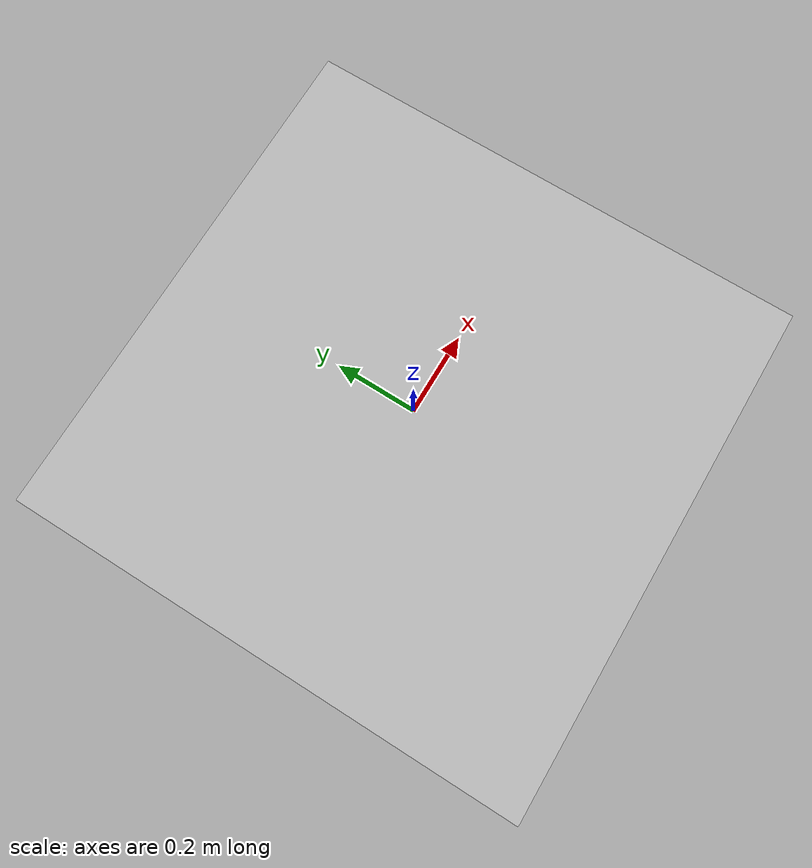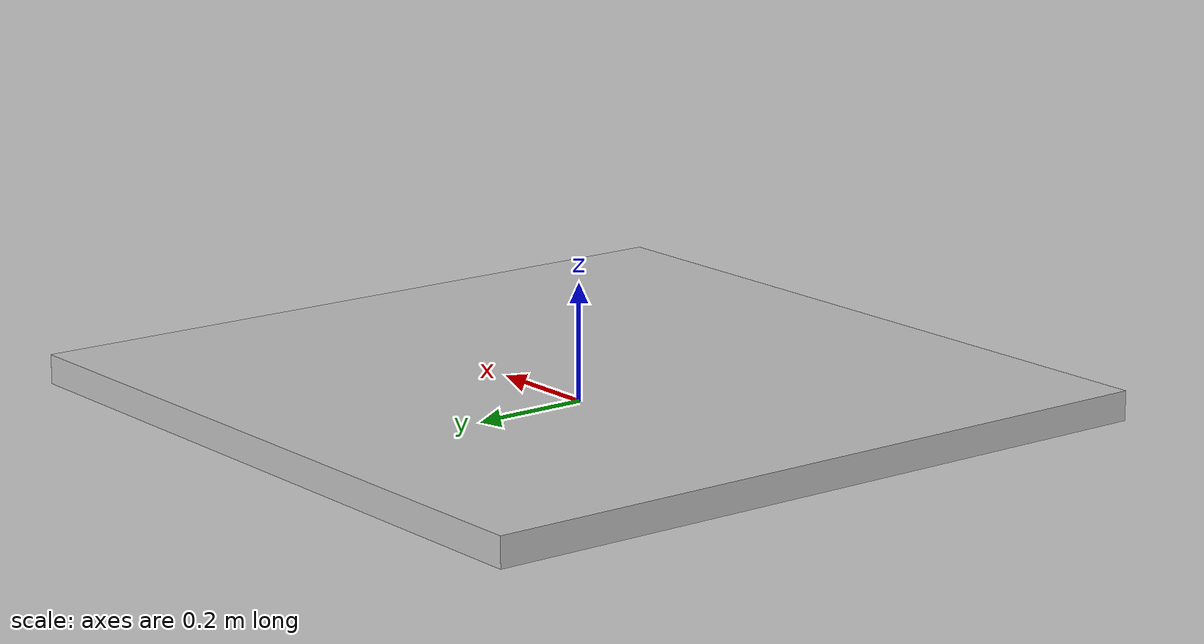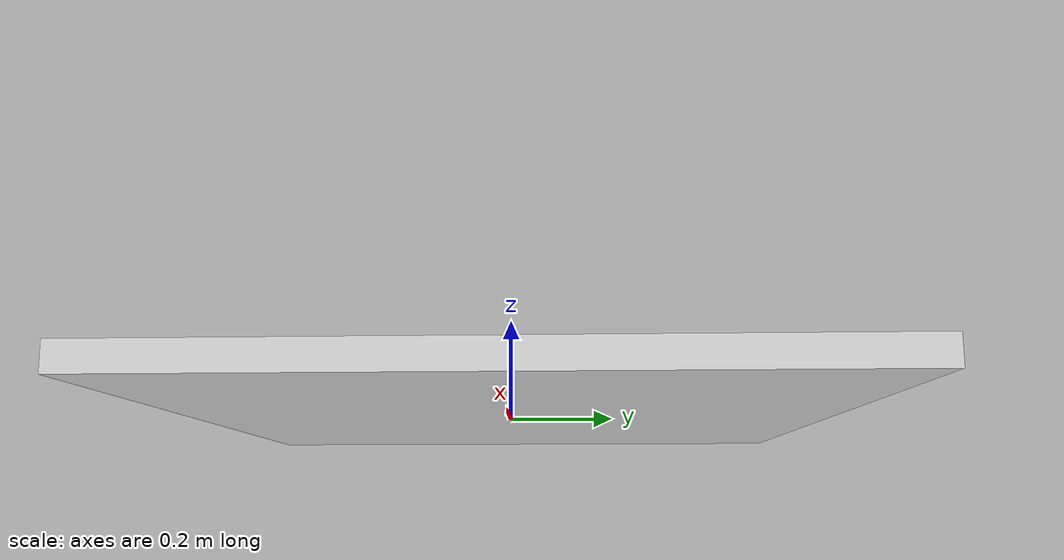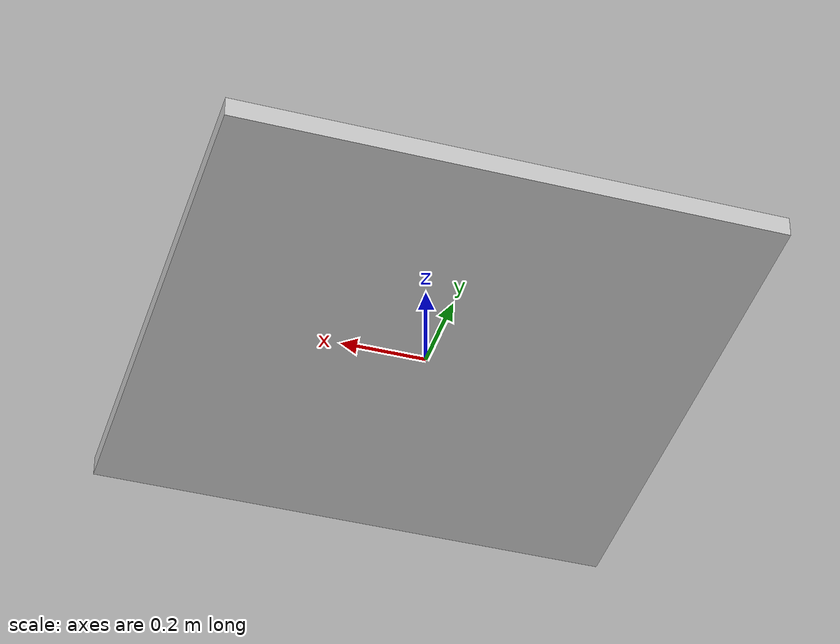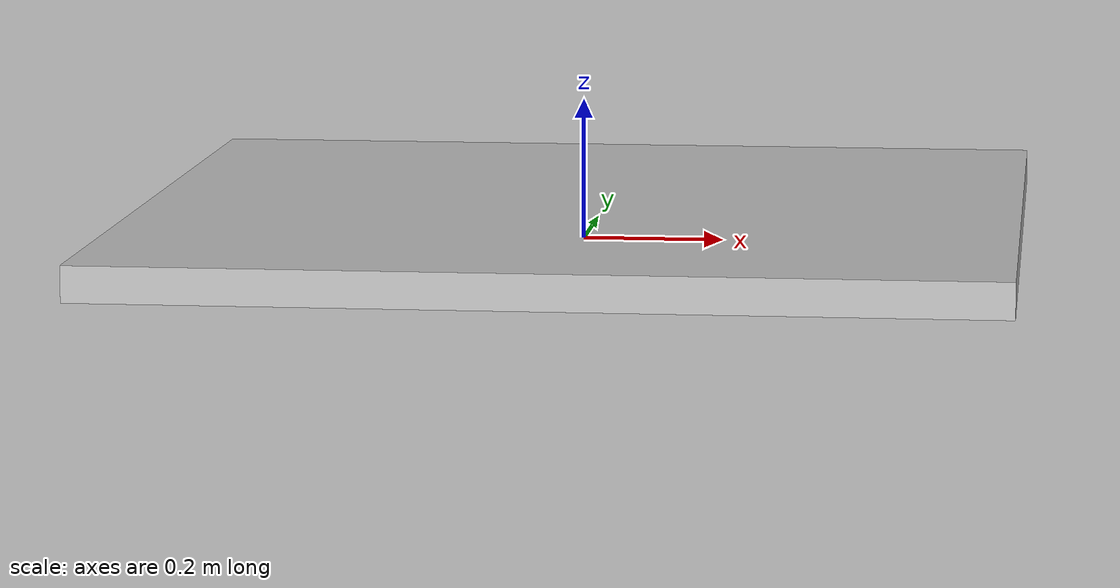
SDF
<?xml version="1.0" ?>
<sdf version="1.6">
  <model name="aruco_688">
    <static>true</static>
    <link name="link">
      <collision name="collision">
        <geometry>
          <mesh>
            <scale>5 5 5</scale>
            <uri>model://aruco_688/meshes/marker.stl</uri>
          </mesh>
           <surface>
            <friction>
              <ode>
                <mu>1.2</mu>
                <mu2>1.2</mu2>
              </ode>
            </friction>
          </surface>
        </geometry>
      </collision>
      <visual name="visual">
        <geometry>
          <mesh>
            <scale>5 5 5</scale>
            <uri>model://aruco_688/meshes/marker.dae</uri>
          </mesh>
        </geometry>
      </visual>
    </link>
  </model>
</sdf>
